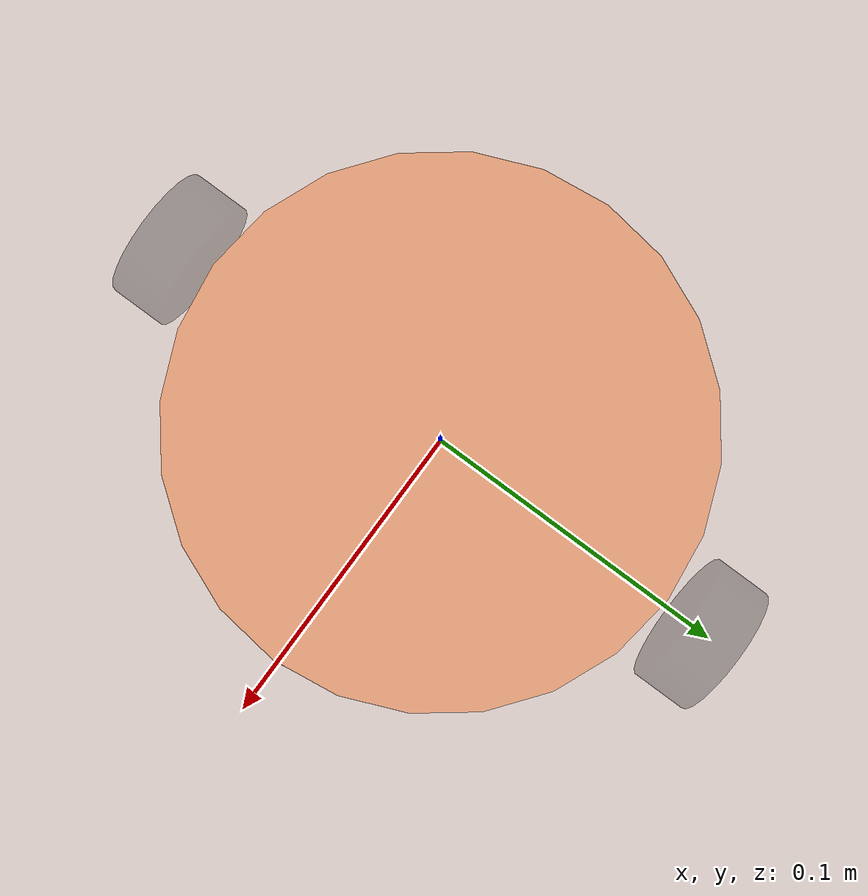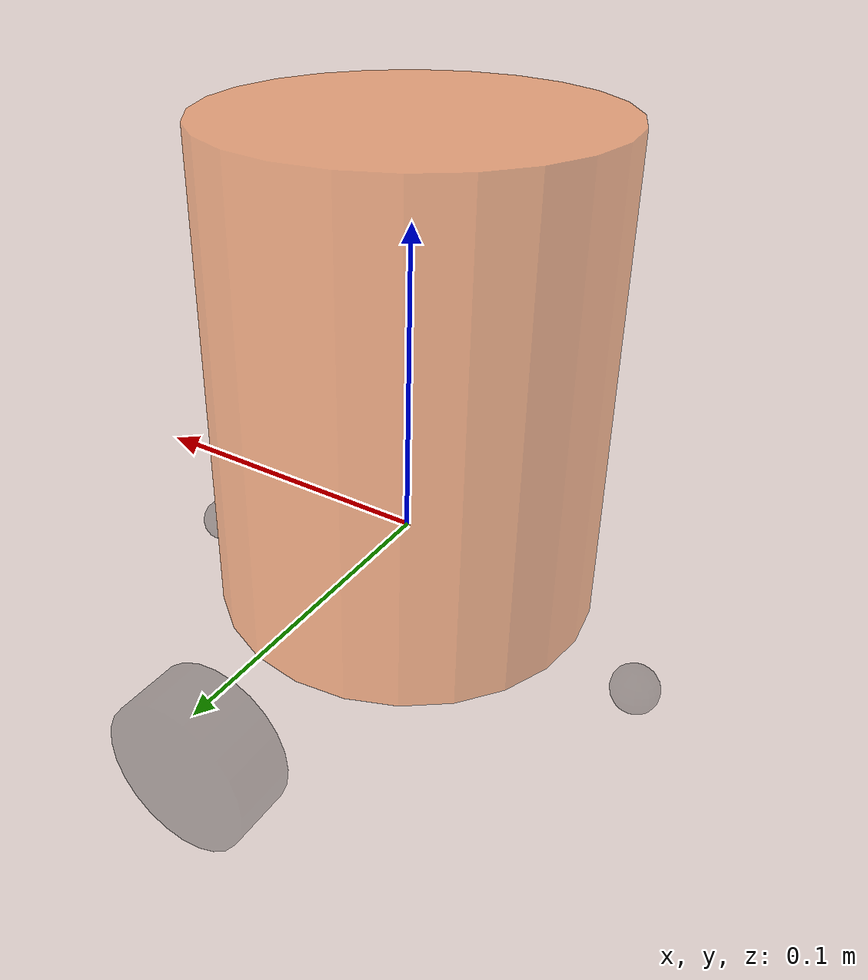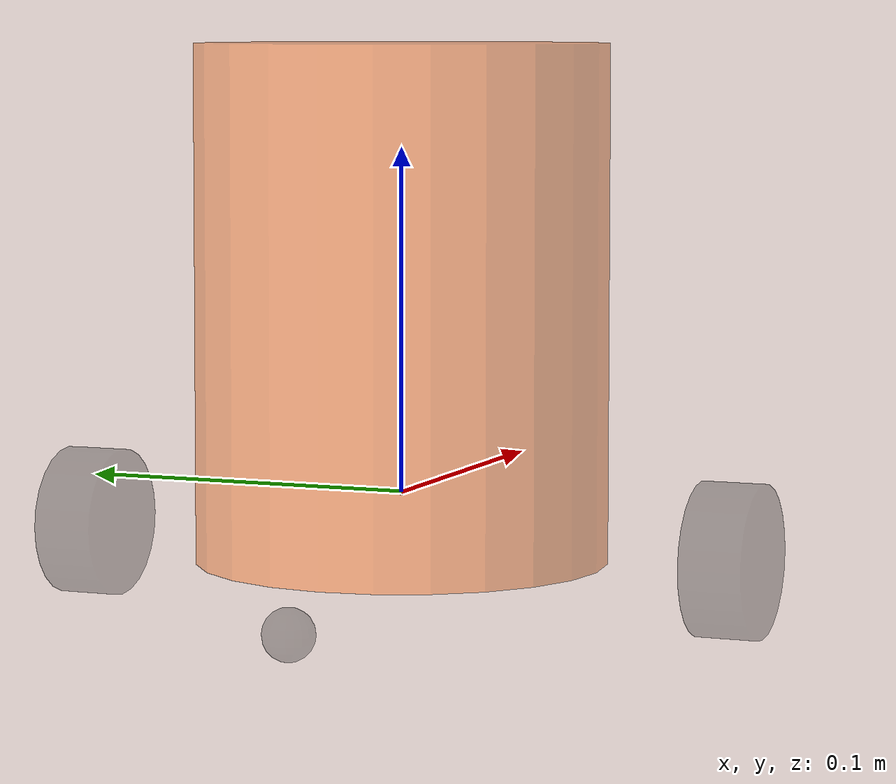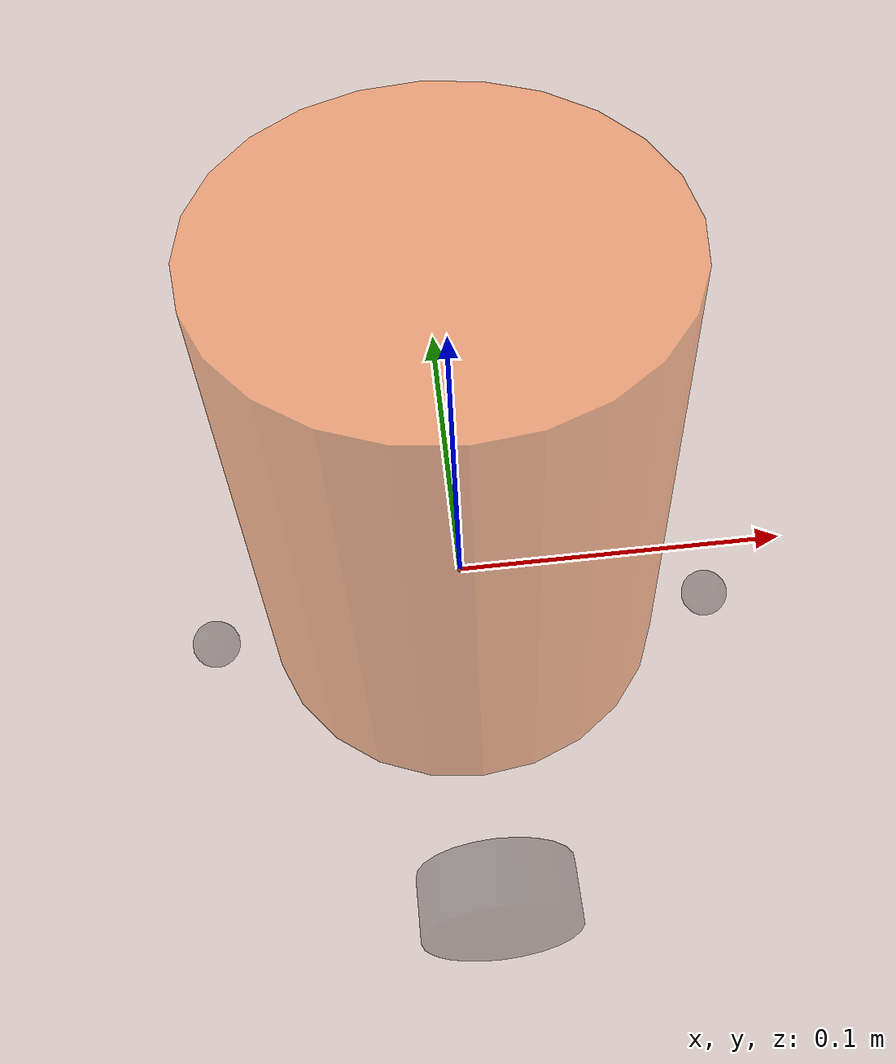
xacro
<robot name="mycar" xmlns:xacro="http://wiki.ros.org/xacro">

    <xacro:property name="footprint_radius" value="0.001" />
    <link name="base_footprint">
        <visual>
            <geometry>
                <sphere radius="${footprint_radius}" />
            </geometry>
        </visual>
    </link>

    <xacro:property name="base_radius" value="0.06" />
    <xacro:property name="base_length" value="0.15" />
    <xacro:property name="lidi" value="0.016" />
    <xacro:property name="base_joint_z" value="${base_length / 2 + lidi}" />
    <link name="base_link">
        <visual>
            <geometry>
                <cylinder radius="${base_radius}" length="${base_length}" />
            </geometry>

            <origin xyz="0 0 0" rpy="0 0 0" />

            <material name="baselink_color">
                <color rgba="1.0 0.5 0.2 0.5" />
            </material>
        </visual>

    </link>

    <joint name="link2footprint" type="fixed">
        <parent link="base_footprint"  />
        <child link="base_link" />
        <origin xyz="0 0 0.055" rpy="0 0 0" />
    </joint>

    <xacro:property name="wheel_radius" value="0.022" />
    <xacro:property name="wheel_length" value="0.018" />
    <xacro:property name="PI" value="3.1415927" />
    <xacro:property name="wheel_joint_z" value="${(base_length / 2 + lidi - wheel_radius) * -1}" />

    <xacro:macro name="wheel_func" params="wheel_name flag">

        <link name="${wheel_name}_wheel">
            <visual>
                <geometry>
                    <cylinder radius="${wheel_radius}" length="${wheel_length}" />
                </geometry>

                <origin xyz="0 0 0" rpy="${PI / 2} 0 0" />

                <material name="wheel_color">
                    <color rgba="0 0 0 0.3" />
                </material>
            </visual>

        </link>

        <joint name="${wheel_name}2link" type="continuous">
            <parent link="base_link"  />
            <child link="${wheel_name}_wheel" />

            <origin xyz="0 ${0.1 * flag} ${wheel_joint_z}" rpy="0 0 0" />
            <axis xyz="0 1 0" />
        </joint>

    </xacro:macro>

    <xacro:wheel_func wheel_name="left" flag="1" />
    <xacro:wheel_func wheel_name="right" flag="-1" />

    <xacro:property name="small_wheel_radius" value="0.0075" />
    <xacro:property name="small_joint_z" value="${(base_length / 2 + lidi - small_wheel_radius) * -1}" />

    <xacro:macro name="small_wheel_func" params="small_wheel_name flag">
        <link name="${small_wheel_name}_wheel">
            <visual>
                <geometry>
                    <sphere radius="${small_wheel_radius}" />
                </geometry>

                <origin xyz="0 0 0" rpy="0 0 0" />

                <material name="wheel_color">
                    <color rgba="0 0 0 0.3" />
                </material>
            </visual>

        </link>

        <joint name="${small_wheel_name}2link" type="continuous">
            <parent link="base_link"  />
            <child link="${small_wheel_name}_wheel" />

            <origin xyz="${0.08 * flag} 0 ${small_joint_z}" rpy="0 0 0" />
            <axis xyz="0 1 0" />
        </joint>

    </xacro:macro >
    <xacro:small_wheel_func small_wheel_name="front" flag="1"/>
    <xacro:small_wheel_func small_wheel_name="back" flag="-1"/>

</robot>
